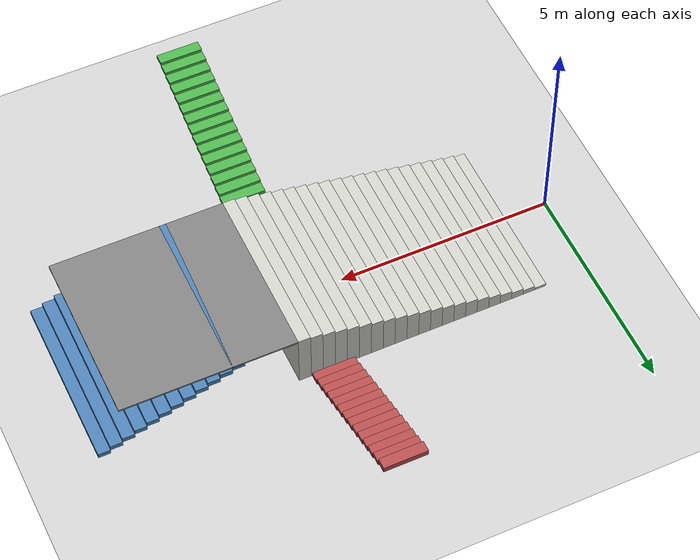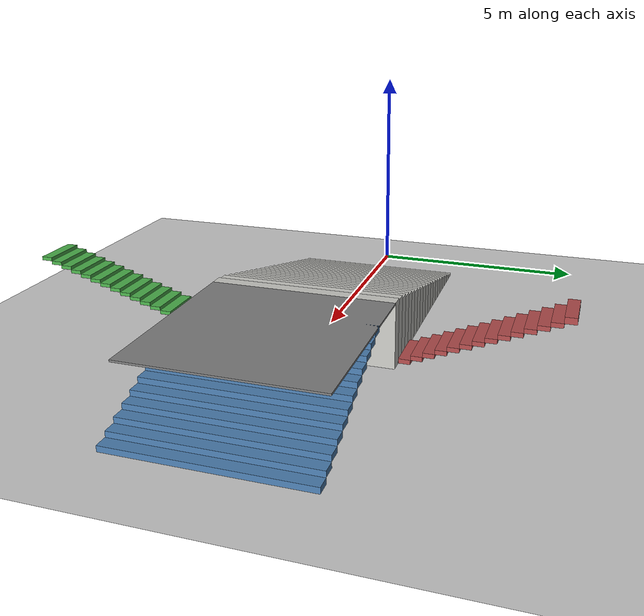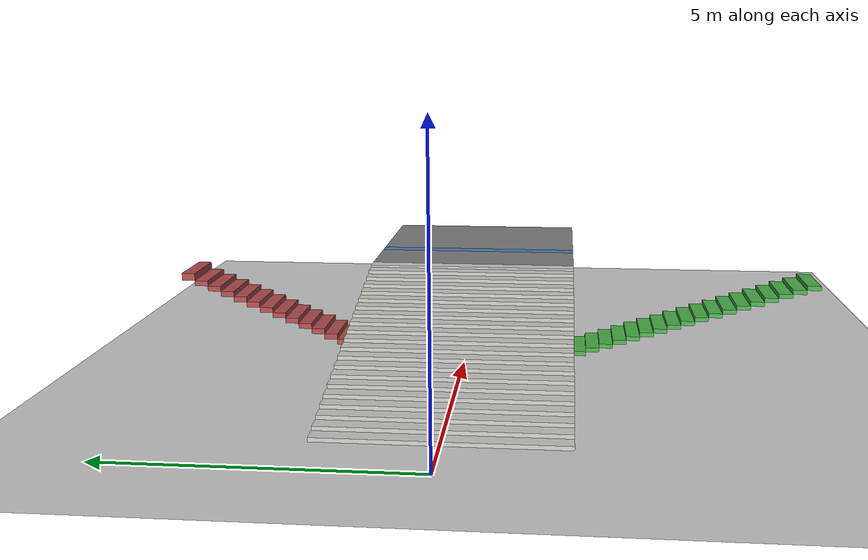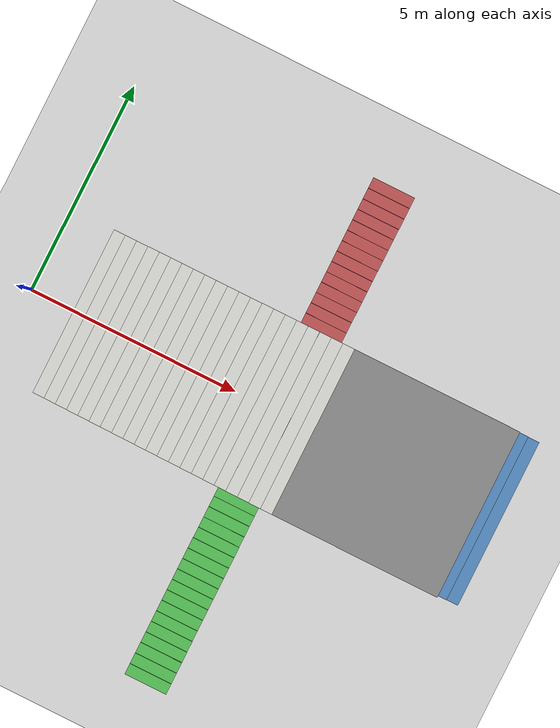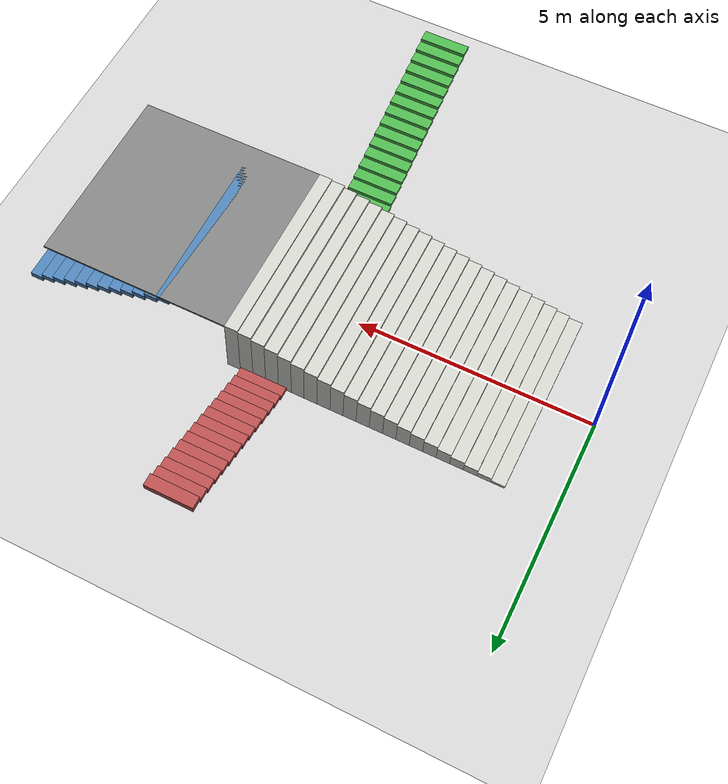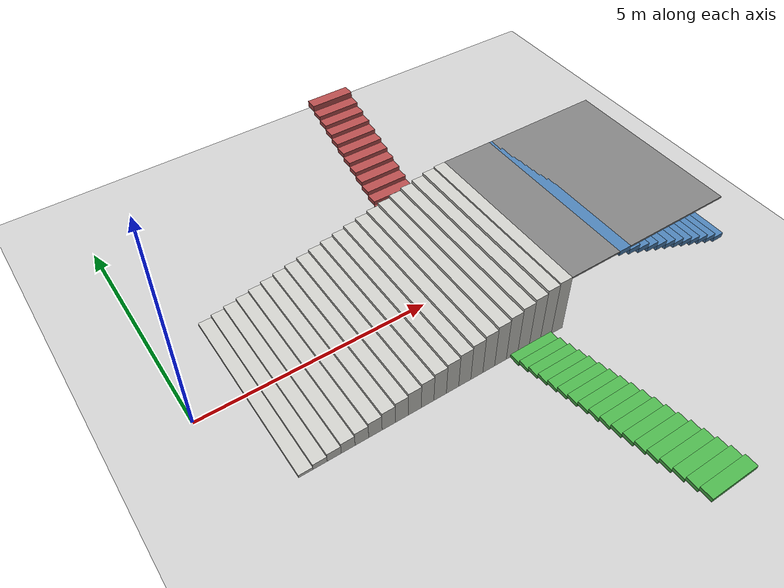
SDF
<sdf version="1.6">
 <world name="patient_stairs">
  <include><uri>model://ground_plane</uri></include>
  <include><uri>model://sun</uri></include>
  <physics name="default_physics" default="0" type="ode">
   <max_step_size>0.001</max_step_size>
   <real_time_factor>1</real_time_factor>
   <real_time_update_rate>1000</real_time_update_rate>
  </physics>
  <model name="top_platform">
   <static>true</static>
   <pose>8.90 0 1.42 0 0 0</pose>
   <link name="platform">
    <collision name="col">
     <geometry><box><size>4.0 4.0 0.04</size></box></geometry>
     <surface><friction><ode><mu>1.0</mu><mu2>1.0</mu2></ode></friction></surface>
    </collision>
    <visual name="vis">
     <geometry><box><size>4.0 4.0 0.04</size></box></geometry>
     <material><ambient>0.5 0.5 0.5 1</ambient><diffuse>0.5 0.5 0.5 1</diffuse></material>
    </visual>
   </link>
  </model>
  <model name="stairs_A">
   <static>true</static>
   <pose>1.02 0 0 0 0 0</pose>
   <link name="A_step1">
    <pose>0.1400 0 0.0350 0 0 0</pose>
    <collision name="col">
     <geometry><box><size>0.28 4.0 0.0700</size></box></geometry>
     <surface><friction><ode><mu>1.0</mu><mu2>1.0</mu2></ode></friction></surface>
    </collision>
    <visual name="vis">
     <geometry><box><size>0.28 4.0 0.0700</size></box></geometry>
     <material>
      <script><uri>file://media/materials/scripts/gazebo.material</uri><name>Gazebo/CeilingTiled</name></script>
     </material>
    </visual>
   </link>
   <link name="A_step2">
    <pose>0.4200 0 0.0700 0 0 0</pose>
    <collision name="col">
     <geometry><box><size>0.28 4.0 0.1400</size></box></geometry>
     <surface><friction><ode><mu>1.0</mu><mu2>1.0</mu2></ode></friction></surface>
    </collision>
    <visual name="vis">
     <geometry><box><size>0.28 4.0 0.1400</size></box></geometry>
     <material>
      <script><uri>file://media/materials/scripts/gazebo.material</uri><name>Gazebo/CeilingTiled</name></script>
     </material>
    </visual>
   </link>
   <link name="A_step3">
    <pose>0.7000 0 0.1050 0 0 0</pose>
    <collision name="col">
     <geometry><box><size>0.28 4.0 0.2100</size></box></geometry>
     <surface><friction><ode><mu>1.0</mu><mu2>1.0</mu2></ode></friction></surface>
    </collision>
    <visual name="vis">
     <geometry><box><size>0.28 4.0 0.2100</size></box></geometry>
     <material>
      <script><uri>file://media/materials/scripts/gazebo.material</uri><name>Gazebo/CeilingTiled</name></script>
     </material>
    </visual>
   </link>
   <link name="A_step4">
    <pose>0.9800 0 0.1400 0 0 0</pose>
    <collision name="col">
     <geometry><box><size>0.28 4.0 0.2800</size></box></geometry>
     <surface><friction><ode><mu>1.0</mu><mu2>1.0</mu2></ode></friction></surface>
    </collision>
    <visual name="vis">
     <geometry><box><size>0.28 4.0 0.2800</size></box></geometry>
     <material>
      <script><uri>file://media/materials/scripts/gazebo.material</uri><name>Gazebo/CeilingTiled</name></script>
     </material>
    </visual>
   </link>
   <link name="A_step5">
    <pose>1.2600 0 0.1750 0 0 0</pose>
    <collision name="col">
     <geometry><box><size>0.28 4.0 0.3500</size></box></geometry>
     <surface><friction><ode><mu>1.0</mu><mu2>1.0</mu2></ode></friction></surface>
    </collision>
    <visual name="vis">
     <geometry><box><size>0.28 4.0 0.3500</size></box></geometry>
     <material>
      <script><uri>file://media/materials/scripts/gazebo.material</uri><name>Gazebo/CeilingTiled</name></script>
     </material>
    </visual>
   </link>
   <link name="A_step6">
    <pose>1.5400 0 0.2100 0 0 0</pose>
    <collision name="col">
     <geometry><box><size>0.28 4.0 0.4200</size></box></geometry>
     <surface><friction><ode><mu>1.0</mu><mu2>1.0</mu2></ode></friction></surface>
    </collision>
    <visual name="vis">
     <geometry><box><size>0.28 4.0 0.4200</size></box></geometry>
     <material>
      <script><uri>file://media/materials/scripts/gazebo.material</uri><name>Gazebo/CeilingTiled</name></script>
     </material>
    </visual>
   </link>
   <link name="A_step7">
    <pose>1.8200 0 0.2450 0 0 0</pose>
    <collision name="col">
     <geometry><box><size>0.28 4.0 0.4900</size></box></geometry>
     <surface><friction><ode><mu>1.0</mu><mu2>1.0</mu2></ode></friction></surface>
    </collision>
    <visual name="vis">
     <geometry><box><size>0.28 4.0 0.4900</size></box></geometry>
     <material>
      <script><uri>file://media/materials/scripts/gazebo.material</uri><name>Gazebo/CeilingTiled</name></script>
     </material>
    </visual>
   </link>
   <link name="A_step8">
    <pose>2.1000 0 0.2800 0 0 0</pose>
    <collision name="col">
     <geometry><box><size>0.28 4.0 0.5600</size></box></geometry>
     <surface><friction><ode><mu>1.0</mu><mu2>1.0</mu2></ode></friction></surface>
    </collision>
    <visual name="vis">
     <geometry><box><size>0.28 4.0 0.5600</size></box></geometry>
     <material>
      <script><uri>file://media/materials/scripts/gazebo.material</uri><name>Gazebo/CeilingTiled</name></script>
     </material>
    </visual>
   </link>
   <link name="A_step9">
    <pose>2.3800 0 0.3150 0 0 0</pose>
    <collision name="col">
     <geometry><box><size>0.28 4.0 0.6300</size></box></geometry>
     <surface><friction><ode><mu>1.0</mu><mu2>1.0</mu2></ode></friction></surface>
    </collision>
    <visual name="vis">
     <geometry><box><size>0.28 4.0 0.6300</size></box></geometry>
     <material>
      <script><uri>file://media/materials/scripts/gazebo.material</uri><name>Gazebo/CeilingTiled</name></script>
     </material>
    </visual>
   </link>
   <link name="A_step10">
    <pose>2.6600 0 0.3500 0 0 0</pose>
    <collision name="col">
     <geometry><box><size>0.28 4.0 0.7000</size></box></geometry>
     <surface><friction><ode><mu>1.0</mu><mu2>1.0</mu2></ode></friction></surface>
    </collision>
    <visual name="vis">
     <geometry><box><size>0.28 4.0 0.7000</size></box></geometry>
     <material>
      <script><uri>file://media/materials/scripts/gazebo.material</uri><name>Gazebo/CeilingTiled</name></script>
     </material>
    </visual>
   </link>
   <link name="A_step11">
    <pose>2.9400 0 0.3850 0 0 0</pose>
    <collision name="col">
     <geometry><box><size>0.28 4.0 0.7700</size></box></geometry>
     <surface><friction><ode><mu>1.0</mu><mu2>1.0</mu2></ode></friction></surface>
    </collision>
    <visual name="vis">
     <geometry><box><size>0.28 4.0 0.7700</size></box></geometry>
     <material>
      <script><uri>file://media/materials/scripts/gazebo.material</uri><name>Gazebo/CeilingTiled</name></script>
     </material>
    </visual>
   </link>
   <link name="A_step12">
    <pose>3.2200 0 0.4200 0 0 0</pose>
    <collision name="col">
     <geometry><box><size>0.28 4.0 0.8400</size></box></geometry>
     <surface><friction><ode><mu>1.0</mu><mu2>1.0</mu2></ode></friction></surface>
    </collision>
    <visual name="vis">
     <geometry><box><size>0.28 4.0 0.8400</size></box></geometry>
     <material>
      <script><uri>file://media/materials/scripts/gazebo.material</uri><name>Gazebo/CeilingTiled</name></script>
     </material>
    </visual>
   </link>
   <link name="A_step13">
    <pose>3.5000 0 0.4550 0 0 0</pose>
    <collision name="col">
     <geometry><box><size>0.28 4.0 0.9100</size></box></geometry>
     <surface><friction><ode><mu>1.0</mu><mu2>1.0</mu2></ode></friction></surface>
    </collision>
    <visual name="vis">
     <geometry><box><size>0.28 4.0 0.9100</size></box></geometry>
     <material>
      <script><uri>file://media/materials/scripts/gazebo.material</uri><name>Gazebo/CeilingTiled</name></script>
     </material>
    </visual>
   </link>
   <link name="A_step14">
    <pose>3.7800 0 0.4900 0 0 0</pose>
    <collision name="col">
     <geometry><box><size>0.28 4.0 0.9800</size></box></geometry>
     <surface><friction><ode><mu>1.0</mu><mu2>1.0</mu2></ode></friction></surface>
    </collision>
    <visual name="vis">
     <geometry><box><size>0.28 4.0 0.9800</size></box></geometry>
     <material>
      <script><uri>file://media/materials/scripts/gazebo.material</uri><name>Gazebo/CeilingTiled</name></script>
     </material>
    </visual>
   </link>
   <link name="A_step15">
    <pose>4.0600 0 0.5250 0 0 0</pose>
    <collision name="col">
     <geometry><box><size>0.28 4.0 1.0500</size></box></geometry>
     <surface><friction><ode><mu>1.0</mu><mu2>1.0</mu2></ode></friction></surface>
    </collision>
    <visual name="vis">
     <geometry><box><size>0.28 4.0 1.0500</size></box></geometry>
     <material>
      <script><uri>file://media/materials/scripts/gazebo.material</uri><name>Gazebo/CeilingTiled</name></script>
     </material>
    </visual>
   </link>
   <link name="A_step16">
    <pose>4.3400 0 0.5600 0 0 0</pose>
    <collision name="col">
     <geometry><box><size>0.28 4.0 1.1200</size></box></geometry>
     <surface><friction><ode><mu>1.0</mu><mu2>1.0</mu2></ode></friction></surface>
    </collision>
    <visual name="vis">
     <geometry><box><size>0.28 4.0 1.1200</size></box></geometry>
     <material>
      <script><uri>file://media/materials/scripts/gazebo.material</uri><name>Gazebo/CeilingTiled</name></script>
     </material>
    </visual>
   </link>
   <link name="A_step17">
    <pose>4.6200 0 0.5950 0 0 0</pose>
    <collision name="col">
     <geometry><box><size>0.28 4.0 1.1900</size></box></geometry>
     <surface><friction><ode><mu>1.0</mu><mu2>1.0</mu2></ode></friction></surface>
    </collision>
    <visual name="vis">
     <geometry><box><size>0.28 4.0 1.1900</size></box></geometry>
     <material>
      <script><uri>file://media/materials/scripts/gazebo.material</uri><name>Gazebo/CeilingTiled</name></script>
     </material>
    </visual>
   </link>
   <link name="A_step18">
    <pose>4.9000 0 0.6300 0 0 0</pose>
    <collision name="col">
     <geometry><box><size>0.28 4.0 1.2600</size></box></geometry>
     <surface><friction><ode><mu>1.0</mu><mu2>1.0</mu2></ode></friction></surface>
    </collision>
    <visual name="vis">
     <geometry><box><size>0.28 4.0 1.2600</size></box></geometry>
     <material>
      <script><uri>file://media/materials/scripts/gazebo.material</uri><name>Gazebo/CeilingTiled</name></script>
     </material>
    </visual>
   </link>
   <link name="A_step19">
    <pose>5.1800 0 0.6650 0 0 0</pose>
    <collision name="col">
     <geometry><box><size>0.28 4.0 1.3300</size></box></geometry>
     <surface><friction><ode><mu>1.0</mu><mu2>1.0</mu2></ode></friction></surface>
    </collision>
    <visual name="vis">
     <geometry><box><size>0.28 4.0 1.3300</size></box></geometry>
     <material>
      <script><uri>file://media/materials/scripts/gazebo.material</uri><name>Gazebo/CeilingTiled</name></script>
     </material>
    </visual>
   </link>
   <link name="A_step20">
    <pose>5.4600 0 0.7000 0 0 0</pose>
    <collision name="col">
     <geometry><box><size>0.28 4.0 1.4000</size></box></geometry>
     <surface><friction><ode><mu>1.0</mu><mu2>1.0</mu2></ode></friction></surface>
    </collision>
    <visual name="vis">
     <geometry><box><size>0.28 4.0 1.4000</size></box></geometry>
     <material>
      <script><uri>file://media/materials/scripts/gazebo.material</uri><name>Gazebo/CeilingTiled</name></script>
     </material>
    </visual>
   </link>
   <link name="A_step21">
    <pose>5.7400 0 0.7200 0 0 0</pose>
    <collision name="col">
     <geometry><box><size>0.28 4.0 1.4400</size></box></geometry>
     <surface><friction><ode><mu>1.0</mu><mu2>1.0</mu2></ode></friction></surface>
    </collision>
    <visual name="vis">
     <geometry><box><size>0.28 4.0 1.4400</size></box></geometry>
     <material>
      <script><uri>file://media/materials/scripts/gazebo.material</uri><name>Gazebo/CeilingTiled</name></script>
     </material>
    </visual>
   </link>
  </model>
  <model name="stairs_B">
   <static>true</static>
   <pose>8.10 0 0 0 0 0</pose>
   <link name="B_step1">
    <pose>0.14 0 1.38 0 0 0</pose>
    <collision name="col">
     <geometry><box><size>0.28 4.0 0.12</size></box></geometry>
     <surface><friction><ode><mu>1.0</mu><mu2>1.0</mu2></ode></friction></surface>
    </collision>
    <visual name="vis">
     <geometry><box><size>0.28 4.0 0.12</size></box></geometry>
     <material><ambient>0.3 0.5 0.7 1</ambient><diffuse>0.3 0.5 0.7 1</diffuse></material>
    </visual>
   </link>
   <link name="B_step2">
    <pose>0.42 0 1.26 0 0 0</pose>
    <collision name="col">
     <geometry><box><size>0.28 4.0 0.12</size></box></geometry>
     <surface><friction><ode><mu>1.0</mu><mu2>1.0</mu2></ode></friction></surface>
    </collision>
    <visual name="vis">
     <geometry><box><size>0.28 4.0 0.12</size></box></geometry>
     <material><ambient>0.3 0.5 0.7 1</ambient><diffuse>0.3 0.5 0.7 1</diffuse></material>
    </visual>
   </link>
   <link name="B_step3">
    <pose>0.70 0 1.14 0 0 0</pose>
    <collision name="col">
     <geometry><box><size>0.28 4.0 0.12</size></box></geometry>
     <surface><friction><ode><mu>1.0</mu><mu2>1.0</mu2></ode></friction></surface>
    </collision>
    <visual name="vis">
     <geometry><box><size>0.28 4.0 0.12</size></box></geometry>
     <material><ambient>0.3 0.5 0.7 1</ambient><diffuse>0.3 0.5 0.7 1</diffuse></material>
    </visual>
   </link>
   <link name="B_step4">
    <pose>0.98 0 1.02 0 0 0</pose>
    <collision name="col">
     <geometry><box><size>0.28 4.0 0.12</size></box></geometry>
     <surface><friction><ode><mu>1.0</mu><mu2>1.0</mu2></ode></friction></surface>
    </collision>
    <visual name="vis">
     <geometry><box><size>0.28 4.0 0.12</size></box></geometry>
     <material><ambient>0.3 0.5 0.7 1</ambient><diffuse>0.3 0.5 0.7 1</diffuse></material>
    </visual>
   </link>
   <link name="B_step5">
    <pose>1.26 0 0.90 0 0 0</pose>
    <collision name="col">
     <geometry><box><size>0.28 4.0 0.12</size></box></geometry>
     <surface><friction><ode><mu>1.0</mu><mu2>1.0</mu2></ode></friction></surface>
    </collision>
    <visual name="vis">
     <geometry><box><size>0.28 4.0 0.12</size></box></geometry>
     <material><ambient>0.3 0.5 0.7 1</ambient><diffuse>0.3 0.5 0.7 1</diffuse></material>
    </visual>
   </link>
   <link name="B_step6">
    <pose>1.54 0 0.78 0 0 0</pose>
    <collision name="col">
     <geometry><box><size>0.28 4.0 0.12</size></box></geometry>
     <surface><friction><ode><mu>1.0</mu><mu2>1.0</mu2></ode></friction></surface>
    </collision>
    <visual name="vis">
     <geometry><box><size>0.28 4.0 0.12</size></box></geometry>
     <material><ambient>0.3 0.5 0.7 1</ambient><diffuse>0.3 0.5 0.7 1</diffuse></material>
    </visual>
   </link>
   <link name="B_step7">
    <pose>1.82 0 0.66 0 0 0</pose>
    <collision name="col">
     <geometry><box><size>0.28 4.0 0.12</size></box></geometry>
     <surface><friction><ode><mu>1.0</mu><mu2>1.0</mu2></ode></friction></surface>
    </collision>
    <visual name="vis">
     <geometry><box><size>0.28 4.0 0.12</size></box></geometry>
     <material><ambient>0.3 0.5 0.7 1</ambient><diffuse>0.3 0.5 0.7 1</diffuse></material>
    </visual>
   </link>
   <link name="B_step8">
    <pose>2.10 0 0.54 0 0 0</pose>
    <collision name="col">
     <geometry><box><size>0.28 4.0 0.12</size></box></geometry>
     <surface><friction><ode><mu>1.0</mu><mu2>1.0</mu2></ode></friction></surface>
    </collision>
    <visual name="vis">
     <geometry><box><size>0.28 4.0 0.12</size></box></geometry>
     <material><ambient>0.3 0.5 0.7 1</ambient><diffuse>0.3 0.5 0.7 1</diffuse></material>
    </visual>
   </link>
   <link name="B_step9">
    <pose>2.38 0 0.42 0 0 0</pose>
    <collision name="col">
     <geometry><box><size>0.28 4.0 0.12</size></box></geometry>
     <surface><friction><ode><mu>1.0</mu><mu2>1.0</mu2></ode></friction></surface>
    </collision>
    <visual name="vis">
     <geometry><box><size>0.28 4.0 0.12</size></box></geometry>
     <material><ambient>0.3 0.5 0.7 1</ambient><diffuse>0.3 0.5 0.7 1</diffuse></material>
    </visual>
   </link>
   <link name="B_step10">
    <pose>2.66 0 0.30 0 0 0</pose>
    <collision name="col">
     <geometry><box><size>0.28 4.0 0.12</size></box></geometry>
     <surface><friction><ode><mu>1.0</mu><mu2>1.0</mu2></ode></friction></surface>
    </collision>
    <visual name="vis">
     <geometry><box><size>0.28 4.0 0.12</size></box></geometry>
     <material><ambient>0.3 0.5 0.7 1</ambient><diffuse>0.3 0.5 0.7 1</diffuse></material>
    </visual>
   </link>
   <link name="B_step11">
    <pose>2.94 0 0.18 0 0 0</pose>
    <collision name="col">
     <geometry><box><size>0.28 4.0 0.12</size></box></geometry>
     <surface><friction><ode><mu>1.0</mu><mu2>1.0</mu2></ode></friction></surface>
    </collision>
    <visual name="vis">
     <geometry><box><size>0.28 4.0 0.12</size></box></geometry>
     <material><ambient>0.3 0.5 0.7 1</ambient><diffuse>0.3 0.5 0.7 1</diffuse></material>
    </visual>
   </link>
   <link name="B_step12">
    <pose>3.22 0 0.06 0 0 0</pose>
    <collision name="col">
     <geometry><box><size>0.28 4.0 0.12</size></box></geometry>
     <surface><friction><ode><mu>1.0</mu><mu2>1.0</mu2></ode></friction></surface>
    </collision>
    <visual name="vis">
     <geometry><box><size>0.28 4.0 0.12</size></box></geometry>
     <material><ambient>0.3 0.5 0.7 1</ambient><diffuse>0.3 0.5 0.7 1</diffuse></material>
    </visual>
   </link>
  </model>
  <model name="stairs_C">
   <static>true</static>
   <pose>6.10 2.0 0 0 0 0</pose>
   <link name="C_step1">
    <pose>0 0.125 0.05 0 0 0</pose>
    <collision name="col">
     <geometry><box><size>1.0 0.25 0.10</size></box></geometry>
     <surface><friction><ode><mu>1.0</mu><mu2>1.0</mu2></ode></friction></surface>
    </collision>
    <visual name="vis">
     <geometry><box><size>1.0 0.25 0.10</size></box></geometry>
     <material><ambient>0.7 0.3 0.3 1</ambient><diffuse>0.7 0.3 0.3 1</diffuse></material>
    </visual>
   </link>
   <link name="C_step2">
    <pose>0 0.375 0.15 0 0 0</pose>
    <collision name="col">
     <geometry><box><size>1.0 0.25 0.10</size></box></geometry>
     <surface><friction><ode><mu>1.0</mu><mu2>1.0</mu2></ode></friction></surface>
    </collision>
    <visual name="vis">
     <geometry><box><size>1.0 0.25 0.10</size></box></geometry>
     <material><ambient>0.7 0.3 0.3 1</ambient><diffuse>0.7 0.3 0.3 1</diffuse></material>
    </visual>
   </link>
   <link name="C_step3">
    <pose>0 0.625 0.25 0 0 0</pose>
    <collision name="col">
     <geometry><box><size>1.0 0.25 0.10</size></box></geometry>
     <surface><friction><ode><mu>1.0</mu><mu2>1.0</mu2></ode></friction></surface>
    </collision>
    <visual name="vis">
     <geometry><box><size>1.0 0.25 0.10</size></box></geometry>
     <material><ambient>0.7 0.3 0.3 1</ambient><diffuse>0.7 0.3 0.3 1</diffuse></material>
    </visual>
   </link>
   <link name="C_step4">
    <pose>0 0.875 0.35 0 0 0</pose>
    <collision name="col">
     <geometry><box><size>1.0 0.25 0.10</size></box></geometry>
     <surface><friction><ode><mu>1.0</mu><mu2>1.0</mu2></ode></friction></surface>
    </collision>
    <visual name="vis">
     <geometry><box><size>1.0 0.25 0.10</size></box></geometry>
     <material><ambient>0.7 0.3 0.3 1</ambient><diffuse>0.7 0.3 0.3 1</diffuse></material>
    </visual>
   </link>
   <link name="C_step5">
    <pose>0 1.125 0.45 0 0 0</pose>
    <collision name="col">
     <geometry><box><size>1.0 0.25 0.10</size></box></geometry>
     <surface><friction><ode><mu>1.0</mu><mu2>1.0</mu2></ode></friction></surface>
    </collision>
    <visual name="vis">
     <geometry><box><size>1.0 0.25 0.10</size></box></geometry>
     <material><ambient>0.7 0.3 0.3 1</ambient><diffuse>0.7 0.3 0.3 1</diffuse></material>
    </visual>
   </link>
   <link name="C_step6">
    <pose>0 1.375 0.55 0 0 0</pose>
    <collision name="col">
     <geometry><box><size>1.0 0.25 0.10</size></box></geometry>
     <surface><friction><ode><mu>1.0</mu><mu2>1.0</mu2></ode></friction></surface>
    </collision>
    <visual name="vis">
     <geometry><box><size>1.0 0.25 0.10</size></box></geometry>
     <material><ambient>0.7 0.3 0.3 1</ambient><diffuse>0.7 0.3 0.3 1</diffuse></material>
    </visual>
   </link>
   <link name="C_step7">
    <pose>0 1.625 0.65 0 0 0</pose>
    <collision name="col">
     <geometry><box><size>1.0 0.25 0.10</size></box></geometry>
     <surface><friction><ode><mu>1.0</mu><mu2>1.0</mu2></ode></friction></surface>
    </collision>
    <visual name="vis">
     <geometry><box><size>1.0 0.25 0.10</size></box></geometry>
     <material><ambient>0.7 0.3 0.3 1</ambient><diffuse>0.7 0.3 0.3 1</diffuse></material>
    </visual>
   </link>
   <link name="C_step8">
    <pose>0 1.875 0.75 0 0 0</pose>
    <collision name="col">
     <geometry><box><size>1.0 0.25 0.10</size></box></geometry>
     <surface><friction><ode><mu>1.0</mu><mu2>1.0</mu2></ode></friction></surface>
    </collision>
    <visual name="vis">
     <geometry><box><size>1.0 0.25 0.10</size></box></geometry>
     <material><ambient>0.7 0.3 0.3 1</ambient><diffuse>0.7 0.3 0.3 1</diffuse></material>
    </visual>
   </link>
   <link name="C_step9">
    <pose>0 2.125 0.85 0 0 0</pose>
    <collision name="col">
     <geometry><box><size>1.0 0.25 0.10</size></box></geometry>
     <surface><friction><ode><mu>1.0</mu><mu2>1.0</mu2></ode></friction></surface>
    </collision>
    <visual name="vis">
     <geometry><box><size>1.0 0.25 0.10</size></box></geometry>
     <material><ambient>0.7 0.3 0.3 1</ambient><diffuse>0.7 0.3 0.3 1</diffuse></material>
    </visual>
   </link>
   <link name="C_step10">
    <pose>0 2.375 0.95 0 0 0</pose>
    <collision name="col">
     <geometry><box><size>1.0 0.25 0.10</size></box></geometry>
     <surface><friction><ode><mu>1.0</mu><mu2>1.0</mu2></ode></friction></surface>
    </collision>
    <visual name="vis">
     <geometry><box><size>1.0 0.25 0.10</size></box></geometry>
     <material><ambient>0.7 0.3 0.3 1</ambient><diffuse>0.7 0.3 0.3 1</diffuse></material>
    </visual>
   </link>
   <link name="C_step11">
    <pose>0 2.625 1.05 0 0 0</pose>
    <collision name="col">
     <geometry><box><size>1.0 0.25 0.10</size></box></geometry>
     <surface><friction><ode><mu>1.0</mu><mu2>1.0</mu2></ode></friction></surface>
    </collision>
    <visual name="vis">
     <geometry><box><size>1.0 0.25 0.10</size></box></geometry>
     <material><ambient>0.7 0.3 0.3 1</ambient><diffuse>0.7 0.3 0.3 1</diffuse></material>
    </visual>
   </link>
   <link name="C_step12">
    <pose>0 2.875 1.15 0 0 0</pose>
    <collision name="col">
     <geometry><box><size>1.0 0.25 0.10</size></box></geometry>
     <surface><friction><ode><mu>1.0</mu><mu2>1.0</mu2></ode></friction></surface>
    </collision>
    <visual name="vis">
     <geometry><box><size>1.0 0.25 0.10</size></box></geometry>
     <material><ambient>0.7 0.3 0.3 1</ambient><diffuse>0.7 0.3 0.3 1</diffuse></material>
    </visual>
   </link>
   <link name="C_step13">
    <pose>0 3.125 1.25 0 0 0</pose>
    <collision name="col">
     <geometry><box><size>1.0 0.25 0.10</size></box></geometry>
     <surface><friction><ode><mu>1.0</mu><mu2>1.0</mu2></ode></friction></surface>
    </collision>
    <visual name="vis">
     <geometry><box><size>1.0 0.25 0.10</size></box></geometry>
     <material><ambient>0.7 0.3 0.3 1</ambient><diffuse>0.7 0.3 0.3 1</diffuse></material>
    </visual>
   </link>
   <link name="C_step14">
    <pose>0 3.375 1.37 0 0 0</pose>
    <collision name="col">
     <geometry><box><size>1.0 0.25 0.14</size></box></geometry>
     <surface><friction><ode><mu>1.0</mu><mu2>1.0</mu2></ode></friction></surface>
    </collision>
    <visual name="vis">
     <geometry><box><size>1.0 0.25 0.14</size></box></geometry>
     <material><ambient>0.7 0.3 0.3 1</ambient><diffuse>0.7 0.3 0.3 1</diffuse></material>
    </visual>
   </link>
  </model>
  <model name="stairs_D">
   <static>true</static>
   <pose>6.10 -2.0 0 0 0 0</pose>
   <link name="D_step1">
    <pose>0 -0.125 0.04 0 0 0</pose>
    <collision name="col">
     <geometry><box><size>1.0 0.25 0.08</size></box></geometry>
     <surface><friction><ode><mu>1.0</mu><mu2>1.0</mu2></ode></friction></surface>
    </collision>
    <visual name="vis">
     <geometry><box><size>1.0 0.25 0.08</size></box></geometry>
     <material><ambient>0.3 0.7 0.3 1</ambient><diffuse>0.3 0.7 0.3 1</diffuse></material>
    </visual>
   </link>
   <link name="D_step2">
    <pose>0 -0.375 0.12 0 0 0</pose>
    <collision name="col">
     <geometry><box><size>1.0 0.25 0.08</size></box></geometry>
     <surface><friction><ode><mu>1.0</mu><mu2>1.0</mu2></ode></friction></surface>
    </collision>
    <visual name="vis">
     <geometry><box><size>1.0 0.25 0.08</size></box></geometry>
     <material><ambient>0.3 0.7 0.3 1</ambient><diffuse>0.3 0.7 0.3 1</diffuse></material>
    </visual>
   </link>
   <link name="D_step3">
    <pose>0 -0.625 0.20 0 0 0</pose>
    <collision name="col">
     <geometry><box><size>1.0 0.25 0.08</size></box></geometry>
     <surface><friction><ode><mu>1.0</mu><mu2>1.0</mu2></ode></friction></surface>
    </collision>
    <visual name="vis">
     <geometry><box><size>1.0 0.25 0.08</size></box></geometry>
     <material><ambient>0.3 0.7 0.3 1</ambient><diffuse>0.3 0.7 0.3 1</diffuse></material>
    </visual>
   </link>
   <link name="D_step4">
    <pose>0 -0.875 0.28 0 0 0</pose>
    <collision name="col">
     <geometry><box><size>1.0 0.25 0.08</size></box></geometry>
     <surface><friction><ode><mu>1.0</mu><mu2>1.0</mu2></ode></friction></surface>
    </collision>
    <visual name="vis">
     <geometry><box><size>1.0 0.25 0.08</size></box></geometry>
     <material><ambient>0.3 0.7 0.3 1</ambient><diffuse>0.3 0.7 0.3 1</diffuse></material>
    </visual>
   </link>
   <link name="D_step5">
    <pose>0 -1.125 0.36 0 0 0</pose>
    <collision name="col">
     <geometry><box><size>1.0 0.25 0.08</size></box></geometry>
     <surface><friction><ode><mu>1.0</mu><mu2>1.0</mu2></ode></friction></surface>
    </collision>
    <visual name="vis">
     <geometry><box><size>1.0 0.25 0.08</size></box></geometry>
     <material><ambient>0.3 0.7 0.3 1</ambient><diffuse>0.3 0.7 0.3 1</diffuse></material>
    </visual>
   </link>
   <link name="D_step6">
    <pose>0 -1.375 0.44 0 0 0</pose>
    <collision name="col">
     <geometry><box><size>1.0 0.25 0.08</size></box></geometry>
     <surface><friction><ode><mu>1.0</mu><mu2>1.0</mu2></ode></friction></surface>
    </collision>
    <visual name="vis">
     <geometry><box><size>1.0 0.25 0.08</size></box></geometry>
     <material><ambient>0.3 0.7 0.3 1</ambient><diffuse>0.3 0.7 0.3 1</diffuse></material>
    </visual>
   </link>
   <link name="D_step7">
    <pose>0 -1.625 0.52 0 0 0</pose>
    <collision name="col">
     <geometry><box><size>1.0 0.25 0.08</size></box></geometry>
     <surface><friction><ode><mu>1.0</mu><mu2>1.0</mu2></ode></friction></surface>
    </collision>
    <visual name="vis">
     <geometry><box><size>1.0 0.25 0.08</size></box></geometry>
     <material><ambient>0.3 0.7 0.3 1</ambient><diffuse>0.3 0.7 0.3 1</diffuse></material>
    </visual>
   </link>
   <link name="D_step8">
    <pose>0 -1.875 0.60 0 0 0</pose>
    <collision name="col">
     <geometry><box><size>1.0 0.25 0.08</size></box></geometry>
     <surface><friction><ode><mu>1.0</mu><mu2>1.0</mu2></ode></friction></surface>
    </collision>
    <visual name="vis">
     <geometry><box><size>1.0 0.25 0.08</size></box></geometry>
     <material><ambient>0.3 0.7 0.3 1</ambient><diffuse>0.3 0.7 0.3 1</diffuse></material>
    </visual>
   </link>
   <link name="D_step9">
    <pose>0 -2.125 0.68 0 0 0</pose>
    <collision name="col">
     <geometry><box><size>1.0 0.25 0.08</size></box></geometry>
     <surface><friction><ode><mu>1.0</mu><mu2>1.0</mu2></ode></friction></surface>
    </collision>
    <visual name="vis">
     <geometry><box><size>1.0 0.25 0.08</size></box></geometry>
     <material><ambient>0.3 0.7 0.3 1</ambient><diffuse>0.3 0.7 0.3 1</diffuse></material>
    </visual>
   </link>
   <link name="D_step10">
    <pose>0 -2.375 0.76 0 0 0</pose>
    <collision name="col">
     <geometry><box><size>1.0 0.25 0.08</size></box></geometry>
     <surface><friction><ode><mu>1.0</mu><mu2>1.0</mu2></ode></friction></surface>
    </collision>
    <visual name="vis">
     <geometry><box><size>1.0 0.25 0.08</size></box></geometry>
     <material><ambient>0.3 0.7 0.3 1</ambient><diffuse>0.3 0.7 0.3 1</diffuse></material>
    </visual>
   </link>
   <link name="D_step11">
    <pose>0 -2.625 0.84 0 0 0</pose>
    <collision name="col">
     <geometry><box><size>1.0 0.25 0.08</size></box></geometry>
     <surface><friction><ode><mu>1.0</mu><mu2>1.0</mu2></ode></friction></surface>
    </collision>
    <visual name="vis">
     <geometry><box><size>1.0 0.25 0.08</size></box></geometry>
     <material><ambient>0.3 0.7 0.3 1</ambient><diffuse>0.3 0.7 0.3 1</diffuse></material>
    </visual>
   </link>
   <link name="D_step12">
    <pose>0 -2.875 0.92 0 0 0</pose>
    <collision name="col">
     <geometry><box><size>1.0 0.25 0.08</size></box></geometry>
     <surface><friction><ode><mu>1.0</mu><mu2>1.0</mu2></ode></friction></surface>
    </collision>
    <visual name="vis">
     <geometry><box><size>1.0 0.25 0.08</size></box></geometry>
     <material><ambient>0.3 0.7 0.3 1</ambient><diffuse>0.3 0.7 0.3 1</diffuse></material>
    </visual>
   </link>
   <link name="D_step13">
    <pose>0 -3.125 1.00 0 0 0</pose>
    <collision name="col">
     <geometry><box><size>1.0 0.25 0.08</size></box></geometry>
     <surface><friction><ode><mu>1.0</mu><mu2>1.0</mu2></ode></friction></surface>
    </collision>
    <visual name="vis">
     <geometry><box><size>1.0 0.25 0.08</size></box></geometry>
     <material><ambient>0.3 0.7 0.3 1</ambient><diffuse>0.3 0.7 0.3 1</diffuse></material>
    </visual>
   </link>
   <link name="D_step14">
    <pose>0 -3.375 1.08 0 0 0</pose>
    <collision name="col">
     <geometry><box><size>1.0 0.25 0.08</size></box></geometry>
     <surface><friction><ode><mu>1.0</mu><mu2>1.0</mu2></ode></friction></surface>
    </collision>
    <visual name="vis">
     <geometry><box><size>1.0 0.25 0.08</size></box></geometry>
     <material><ambient>0.3 0.7 0.3 1</ambient><diffuse>0.3 0.7 0.3 1</diffuse></material>
    </visual>
   </link>
   <link name="D_step15">
    <pose>0 -3.625 1.16 0 0 0</pose>
    <collision name="col">
     <geometry><box><size>1.0 0.25 0.08</size></box></geometry>
     <surface><friction><ode><mu>1.0</mu><mu2>1.0</mu2></ode></friction></surface>
    </collision>
    <visual name="vis">
     <geometry><box><size>1.0 0.25 0.08</size></box></geometry>
     <material><ambient>0.3 0.7 0.3 1</ambient><diffuse>0.3 0.7 0.3 1</diffuse></material>
    </visual>
   </link>
   <link name="D_step16">
    <pose>0 -3.875 1.24 0 0 0</pose>
    <collision name="col">
     <geometry><box><size>1.0 0.25 0.08</size></box></geometry>
     <surface><friction><ode><mu>1.0</mu><mu2>1.0</mu2></ode></friction></surface>
    </collision>
    <visual name="vis">
     <geometry><box><size>1.0 0.25 0.08</size></box></geometry>
     <material><ambient>0.3 0.7 0.3 1</ambient><diffuse>0.3 0.7 0.3 1</diffuse></material>
    </visual>
   </link>
   <link name="D_step17">
    <pose>0 -4.125 1.32 0 0 0</pose>
    <collision name="col">
     <geometry><box><size>1.0 0.25 0.08</size></box></geometry>
     <surface><friction><ode><mu>1.0</mu><mu2>1.0</mu2></ode></friction></surface>
    </collision>
    <visual name="vis">
     <geometry><box><size>1.0 0.25 0.08</size></box></geometry>
     <material><ambient>0.3 0.7 0.3 1</ambient><diffuse>0.3 0.7 0.3 1</diffuse></material>
    </visual>
   </link>
   <link name="D_step18">
    <pose>0 -4.375 1.40 0 0 0</pose>
    <collision name="col">
     <geometry><box><size>1.0 0.25 0.08</size></box></geometry>
     <surface><friction><ode><mu>1.0</mu><mu2>1.0</mu2></ode></friction></surface>
    </collision>
    <visual name="vis">
     <geometry><box><size>1.0 0.25 0.08</size></box></geometry>
     <material><ambient>0.3 0.7 0.3 1</ambient><diffuse>0.3 0.7 0.3 1</diffuse></material>
    </visual>
   </link>
  </model>
 </world>
</sdf>
